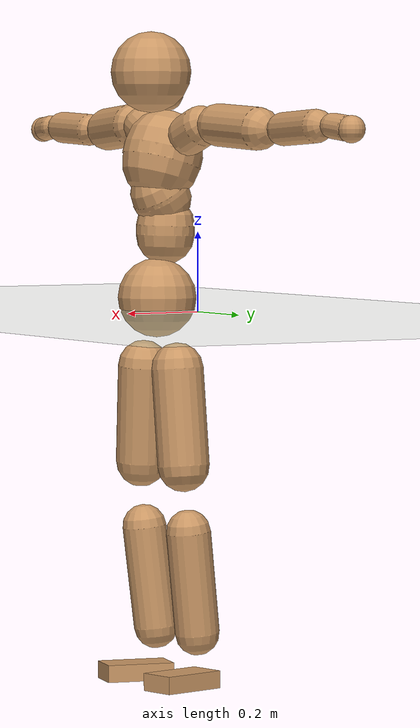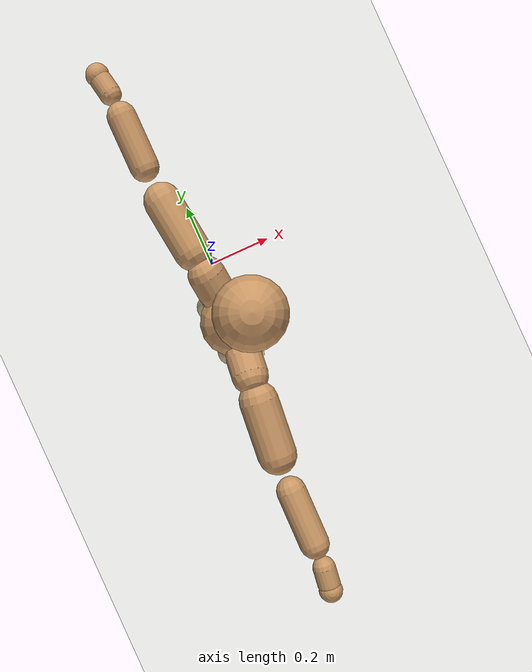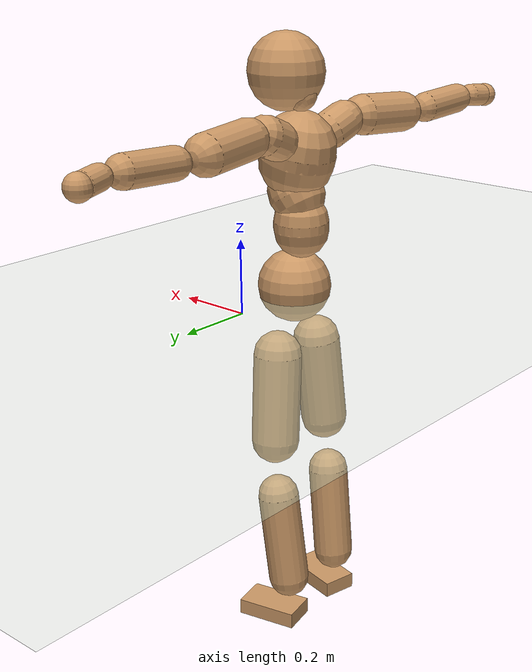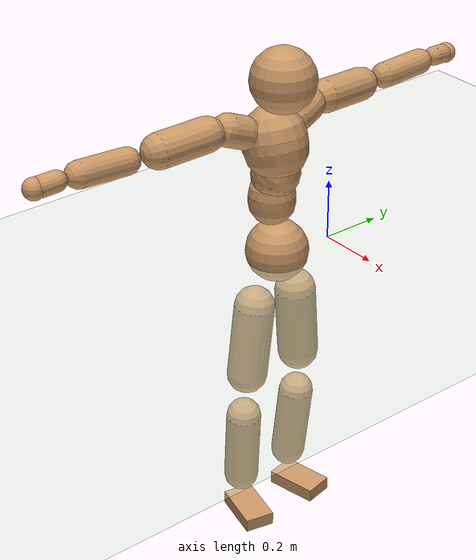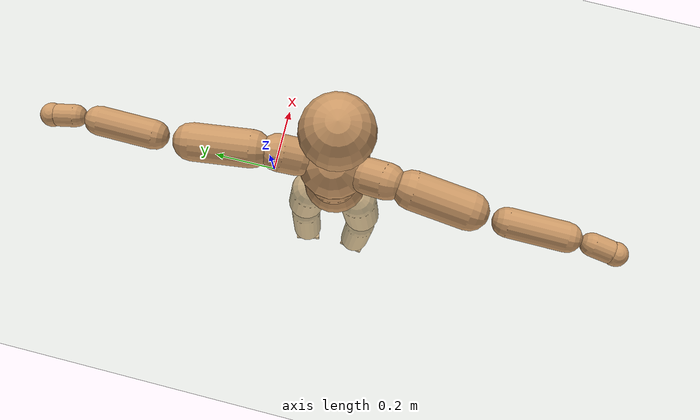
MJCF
<mujoco model="humanoid">
  <compiler coordinate="local" angle="radian"/>
  <default>
    <joint damping="0.0" armature="0.01" stiffness="0.0" limited="true"/>
    <geom conaffinity="1" condim="3" contype="7" margin="0.001" rgba="0.8 0.6 .4 1"/>
  </default>
  <asset>
    <texture type="skybox" builtin="gradient" rgb1=".4 .5 .6" rgb2="0 0 0" width="100" height="100"/>
    <texture builtin="flat" height="1278" mark="cross" markrgb="1 1 1" name="texgeom" random="0.01" rgb1="0.8 0.6 0.4" rgb2="0.8 0.6 0.4" type="cube" width="127"/>
    <texture builtin="checker" height="100" name="texplane" rgb1="0 0 0" rgb2="0.8 0.8 0.8" type="2d" width="100"/>
    <material name="MatPlane" reflectance="0.5" shininess="1" specular="1" texrepeat="60 60" texture="texplane"/>
    <material name="geom" texture="texgeom" texuniform="true"/>
  </asset>
  <worldbody>
    <light cutoff="100" diffuse="1 1 1" dir="-0 0 -1.3" directional="true" exponent="1" pos="0 0 1.3" specular=".1 .1 .1"/>
    <geom conaffinity="1" condim="3" name="floor" pos="0 0 0" rgba="0.8 0.9 0.8 1" size="100 100 .2" type="plane" material="MatPlane"/>
    <body name="Pelvis" pos="0 -0.2077 0.0279">
      <freejoint name="Pelvis"/>
      <geom type="sphere" contype="1" conaffinity="1" density="500" size="0.1005" pos="0.0000 0.0000 0.0000" name="Pelvis"/>
      <body name="L_Hip" pos="-0.0093 0.0778 -0.0953">
        <joint name="L_Hip_x" type="hinge" pos="0 0 0" axis="1 0 0" stiffness="800" damping="80" armature="0.02" range="-180.0000 180.0000"/>
        <joint name="L_Hip_y" type="hinge" pos="0 0 0" axis="0 1 0" stiffness="800" damping="80" armature="0.02" range="-180.0000 180.0000"/>
        <joint name="L_Hip_z" type="hinge" pos="0 0 0" axis="0 0 1" stiffness="800" damping="80" armature="0.02" range="-180.0000 180.0000"/>
        <geom type="capsule" contype="1" conaffinity="1" density="500" fromto="-0.0019 0.0069 -0.0817 -0.0077 0.0276 -0.3267" size="0.0663" name="L_Hip"/>
        <body name="L_Knee" pos="-0.0096 0.0345 -0.4083">
          <joint name="L_Knee_x" type="hinge" pos="0 0 0" axis="1 0 0" stiffness="800" damping="80" armature="0.02" range="-180.0000 180.0000"/>
          <joint name="L_Knee_y" type="hinge" pos="0 0 0" axis="0 1 0" stiffness="800" damping="80" armature="0.02" range="-180.0000 180.0000"/>
          <joint name="L_Knee_z" type="hinge" pos="0 0 0" axis="0 0 1" stiffness="800" damping="80" armature="0.02" range="-180.0000 180.0000"/>
          <geom type="capsule" contype="1" conaffinity="1" density="500" fromto="-0.0099 -0.0024 -0.0867 -0.0398 -0.0096 -0.3466" size="0.0568" name="L_Knee"/>
          <body name="L_Ankle" pos="-0.0497 -0.012 -0.4333">
            <joint name="L_Ankle_x" type="hinge" pos="0 0 0" axis="1 0 0" stiffness="800" damping="80" armature="0.02" range="-180.0000 180.0000"/>
            <joint name="L_Ankle_y" type="hinge" pos="0 0 0" axis="0 1 0" stiffness="800" damping="80" armature="0.02" range="-180.0000 180.0000"/>
            <joint name="L_Ankle_z" type="hinge" pos="0 0 0" axis="0 0 1" stiffness="800" damping="80" armature="0.02" range="-180.0000 180.0000"/>
            <geom type="box" contype="1" conaffinity="1" density="500" pos="0.0607 0.0130 -0.0304" size="0.0862 0.0482 0.0224" quat="0.9944 0.0000 0.0000 0.1056" name="L_Ankle"/>
            <body name="L_Toe" pos="0.1214 0.0261 -0.0609">
              <joint name="L_Toe_x" type="hinge" pos="0 0 0" axis="1 0 0" stiffness="500" damping="50" armature="0.02" range="-180.0000 180.0000"/>
              <joint name="L_Toe_y" type="hinge" pos="0 0 0" axis="0 1 0" stiffness="500" damping="50" armature="0.02" range="-180.0000 180.0000"/>
              <joint name="L_Toe_z" type="hinge" pos="0 0 0" axis="0 0 1" stiffness="500" damping="50" armature="0.02" range="-180.0000 180.0000"/>
              <geom type="box" contype="1" conaffinity="1" density="500" pos="0.0000 0.0000 0.0298" size="0.001 0.0024 0.0011" quat="0.9937 0.0000 0.0000 0.1116" name="L_Toe"/>
            </body>
          </body>
        </body>
      </body>
      <body name="R_Hip" pos="-0.0051 -0.0752 -0.0947">
        <joint name="R_Hip_x" type="hinge" pos="0 0 0" axis="1 0 0" stiffness="800" damping="80" armature="0.02" range="-180.0000 180.0000"/>
        <joint name="R_Hip_y" type="hinge" pos="0 0 0" axis="0 1 0" stiffness="800" damping="80" armature="0.02" range="-180.0000 180.0000"/>
        <joint name="R_Hip_z" type="hinge" pos="0 0 0" axis="0 0 1" stiffness="800" damping="80" armature="0.02" range="-180.0000 180.0000"/>
        <geom type="capsule" contype="1" conaffinity="1" density="500" fromto="-0.0025 -0.0084 -0.0828 -0.0099 -0.0336 -0.3313" size="0.0654" name="R_Hip"/>
        <body name="R_Knee" pos="-0.0123 -0.042 -0.4142">
          <joint name="R_Knee_x" type="hinge" pos="0 0 0" axis="1 0 0" stiffness="800" damping="80" armature="0.02" range="-180.0000 180.0000"/>
          <joint name="R_Knee_y" type="hinge" pos="0 0 0" axis="0 1 0" stiffness="800" damping="80" armature="0.02" range="-180.0000 180.0000"/>
          <joint name="R_Knee_z" type="hinge" pos="0 0 0" axis="0 0 1" stiffness="800" damping="80" armature="0.02" range="-180.0000 180.0000"/>
          <geom type="capsule" contype="1" conaffinity="1" density="500" fromto="-0.0095 0.0031 -0.0868 -0.0380 0.0123 -0.3472" size="0.0569" name="R_Knee"/>
          <body name="R_Ankle" pos="-0.0475 0.0154 -0.434">
            <joint name="R_Ankle_x" type="hinge" pos="0 0 0" axis="1 0 0" stiffness="800" damping="80" armature="0.02" range="-180.0000 180.0000"/>
            <joint name="R_Ankle_y" type="hinge" pos="0 0 0" axis="0 1 0" stiffness="800" damping="80" armature="0.02" range="-180.0000 180.0000"/>
            <joint name="R_Ankle_z" type="hinge" pos="0 0 0" axis="0 0 1" stiffness="800" damping="80" armature="0.02" range="-180.0000 180.0000"/>
            <geom type="box" contype="1" conaffinity="1" density="500" pos="0.0628 -0.0138 -0.0262" size="0.0879 0.0486 0.0222" quat="0.9942 0.0000 0.0000 -0.1080" name="R_Ankle"/>
            <body name="R_Toe" pos="0.1256 -0.0276 -0.0523">
              <joint name="R_Toe_x" type="hinge" pos="0 0 0" axis="1 0 0" stiffness="500" damping="50" armature="0.02" range="-180.0000 180.0000"/>
              <joint name="R_Toe_y" type="hinge" pos="0 0 0" axis="0 1 0" stiffness="500" damping="50" armature="0.02" range="-180.0000 180.0000"/>
              <joint name="R_Toe_z" type="hinge" pos="0 0 0" axis="0 0 1" stiffness="500" damping="50" armature="0.02" range="-180.0000 180.0000"/>
              <geom type="box" contype="1" conaffinity="1" density="500" pos="0.0000 0.0000 0.0282" size="0.0009 0.0024 0.0012" quat="0.9951 0.0000 0.0000 -0.0989" name="R_Toe"/>
            </body>
          </body>
        </body>
      </body>
      <body name="Torso" pos="-0.0241 -0.0026 0.1089">
        <joint name="Torso_x" type="hinge" pos="0 0 0" axis="1 0 0" stiffness="1000" damping="100" armature="0.02" range="-180.0000 180.0000"/>
        <joint name="Torso_y" type="hinge" pos="0 0 0" axis="0 1 0" stiffness="1000" damping="100" armature="0.02" range="-180.0000 180.0000"/>
        <joint name="Torso_z" type="hinge" pos="0 0 0" axis="0 0 1" stiffness="1000" damping="100" armature="0.02" range="-180.0000 180.0000"/>
        <geom type="capsule" contype="1" conaffinity="1" density="500" fromto="-0.0011 0.0020 0.0751 -0.0007 0.0013 0.0501" size="0.0746" name="Torso"/>
        <body name="Spine" pos="-0.0019 0.0033 0.1251">
          <joint name="Spine_x" type="hinge" pos="0 0 0" axis="1 0 0" stiffness="1000" damping="100" armature="0.02" range="-180.0000 180.0000"/>
          <joint name="Spine_y" type="hinge" pos="0 0 0" axis="0 1 0" stiffness="1000" damping="100" armature="0.02" range="-180.0000 180.0000"/>
          <joint name="Spine_z" type="hinge" pos="0 0 0" axis="0 0 1" stiffness="1000" damping="100" armature="0.02" range="-180.0000 180.0000"/>
          <geom type="capsule" contype="1" conaffinity="1" density="500" fromto="0.0187 0.0009 0.0304 0.0124 0.0006 0.0203" size="0.0757" name="Spine"/>
          <body name="Chest" pos="0.0311 0.0015 0.0506">
            <joint name="Chest_x" type="hinge" pos="0 0 0" axis="1 0 0" stiffness="1000" damping="100" armature="0.02" range="-180.0000 180.0000"/>
            <joint name="Chest_y" type="hinge" pos="0 0 0" axis="0 1 0" stiffness="1000" damping="100" armature="0.02" range="-180.0000 180.0000"/>
            <joint name="Chest_z" type="hinge" pos="0 0 0" axis="0 0 1" stiffness="1000" damping="100" armature="0.02" range="-180.0000 180.0000"/>
            <geom type="capsule" contype="1" conaffinity="1" density="500" fromto="-0.0248 -0.0008 0.0918 -0.0165 -0.0005 0.0612" size="0.1016" name="Chest"/>
            <body name="Neck" pos="-0.0438 -0.0021 0.2181">
              <joint name="Neck_x" type="hinge" pos="0 0 0" axis="1 0 0" stiffness="500" damping="50" armature="0.02" range="-180.0000 180.0000"/>
              <joint name="Neck_y" type="hinge" pos="0 0 0" axis="0 1 0" stiffness="500" damping="50" armature="0.02" range="-180.0000 180.0000"/>
              <joint name="Neck_z" type="hinge" pos="0 0 0" axis="0 0 1" stiffness="500" damping="50" armature="0.02" range="-180.0000 180.0000"/>
              <geom type="capsule" contype="1" conaffinity="1" density="500" fromto="0.0116 0.0007 0.0138 0.0464 0.0028 0.0553" size="0.0431" name="Neck"/>
              <body name="Head" pos="0.058 0.0035 0.0691">
                <joint name="Head_x" type="hinge" pos="0 0 0" axis="1 0 0" stiffness="500" damping="50" armature="0.02" range="-180.0000 180.0000"/>
                <joint name="Head_y" type="hinge" pos="0 0 0" axis="0 1 0" stiffness="500" damping="50" armature="0.02" range="-180.0000 180.0000"/>
                <joint name="Head_z" type="hinge" pos="0 0 0" axis="0 0 1" stiffness="500" damping="50" armature="0.02" range="-180.0000 180.0000"/>
                <geom type="sphere" contype="1" conaffinity="1" density="500" size="0.1025" pos="0.0000 0.0000 0.0000" name="Head"/>
              </body>
            </body>
            <body name="L_Thorax" pos="-0.0375 0.0803 0.1214">
              <joint name="L_Thorax_x" type="hinge" pos="0 0 0" axis="1 0 0" stiffness="500" damping="50" armature="0.02" range="-180.0000 180.0000"/>
              <joint name="L_Thorax_y" type="hinge" pos="0 0 0" axis="0 1 0" stiffness="500" damping="50" armature="0.02" range="-180.0000 180.0000"/>
              <joint name="L_Thorax_z" type="hinge" pos="0 0 0" axis="0 0 1" stiffness="500" damping="50" armature="0.02" range="-180.0000 180.0000"/>
              <geom type="capsule" contype="1" conaffinity="1" density="500" fromto="-0.0020 0.0174 0.0070 -0.0080 0.0697 0.0281" size="0.0529" name="L_Thorax"/>
              <body name="L_Shoulder" pos="-0.01 0.0871 0.0352">
                <joint name="L_Shoulder_x" type="hinge" pos="0 0 0" axis="1 0 0" stiffness="500" damping="50" armature="0.02" range="-720.0000 720.0000"/>
                <joint name="L_Shoulder_y" type="hinge" pos="0 0 0" axis="0 1 0" stiffness="500" damping="50" armature="0.02" range="-720.0000 720.0000"/>
                <joint name="L_Shoulder_z" type="hinge" pos="0 0 0" axis="0 0 1" stiffness="500" damping="50" armature="0.02" range="-720.0000 720.0000"/>
                <geom type="capsule" contype="1" conaffinity="1" density="500" fromto="-0.0063 0.0546 -0.0033 -0.0250 0.2186 -0.0131" size="0.0535" name="L_Shoulder"/>
                <body name="L_Elbow" pos="-0.0313 0.2732 -0.0163">
                  <joint name="L_Elbow_x" type="hinge" pos="0 0 0" axis="1 0 0" stiffness="500" damping="50" armature="0.02" range="-720.0000 720.0000"/>
                  <joint name="L_Elbow_y" type="hinge" pos="0 0 0" axis="0 1 0" stiffness="500" damping="50" armature="0.02" range="-720.0000 720.0000"/>
                  <joint name="L_Elbow_z" type="hinge" pos="0 0 0" axis="0 0 1" stiffness="500" damping="50" armature="0.02" range="-720.0000 720.0000"/>
                  <geom type="capsule" contype="1" conaffinity="1" density="500" fromto="-0.0000 0.0511 0.0024 -0.0000 0.2043 0.0097" size="0.0411" name="L_Elbow"/>
                  <body name="L_Wrist" pos="0 0.2554 0.0121">
                    <joint name="L_Wrist_x" type="hinge" pos="0 0 0" axis="1 0 0" stiffness="300" damping="30" armature="0.02" range="-180.0000 180.0000"/>
                    <joint name="L_Wrist_y" type="hinge" pos="0 0 0" axis="0 1 0" stiffness="300" damping="30" armature="0.02" range="-180.0000 180.0000"/>
                    <joint name="L_Wrist_z" type="hinge" pos="0 0 0" axis="0 0 1" stiffness="300" damping="30" armature="0.02" range="-180.0000 180.0000"/>
                    <geom type="capsule" contype="1" conaffinity="1" density="500" fromto="-0.0027 0.0165 -0.0020 -0.0110 0.0659 -0.0081" size="0.0311" name="L_Wrist"/>
                    <body name="L_Hand" pos="-0.0137 0.0824 -0.0101">
                      <joint name="L_Hand_x" type="hinge" pos="0 0 0" axis="1 0 0" stiffness="300" damping="30" armature="0.02" range="-180.0000 180.0000"/>
                      <joint name="L_Hand_y" type="hinge" pos="0 0 0" axis="0 1 0" stiffness="300" damping="30" armature="0.02" range="-180.0000 180.0000"/>
                      <joint name="L_Hand_z" type="hinge" pos="0 0 0" axis="0 0 1" stiffness="300" damping="30" armature="0.02" range="-180.0000 180.0000"/>
                      <geom type="sphere" contype="1" conaffinity="1" density="500" size="0.0332" pos="0.0000 0.0000 0.0000" name="L_Hand"/>
                    </body>
                  </body>
                </body>
              </body>
            </body>
            <body name="R_Thorax" pos="-0.0428 -0.082 0.1195">
              <joint name="R_Thorax_x" type="hinge" pos="0 0 0" axis="1 0 0" stiffness="500" damping="50" armature="0.02" range="-180.0000 180.0000"/>
              <joint name="R_Thorax_y" type="hinge" pos="0 0 0" axis="0 1 0" stiffness="500" damping="50" armature="0.02" range="-180.0000 180.0000"/>
              <joint name="R_Thorax_z" type="hinge" pos="0 0 0" axis="0 0 1" stiffness="500" damping="50" armature="0.02" range="-180.0000 180.0000"/>
              <geom type="capsule" contype="1" conaffinity="1" density="500" fromto="-0.0021 -0.0181 0.0074 -0.0086 -0.0724 0.0296" size="0.0519" name="R_Thorax"/>
              <body name="R_Shoulder" pos="-0.0107 -0.0905 0.037">
                <joint name="R_Shoulder_x" type="hinge" pos="0 0 0" axis="1 0 0" stiffness="500" damping="50" armature="0.02" range="-720.0000 720.0000"/>
                <joint name="R_Shoulder_y" type="hinge" pos="0 0 0" axis="0 1 0" stiffness="500" damping="50" armature="0.02" range="-720.0000 720.0000"/>
                <joint name="R_Shoulder_z" type="hinge" pos="0 0 0" axis="0 0 1" stiffness="500" damping="50" armature="0.02" range="-720.0000 720.0000"/>
                <geom type="capsule" contype="1" conaffinity="1" density="500" fromto="-0.0050 -0.0533 -0.0035 -0.0202 -0.2131 -0.0141" size="0.0553" name="R_Shoulder"/>
                <body name="R_Elbow" pos="-0.0252 -0.2664 -0.0177">
                  <joint name="R_Elbow_x" type="hinge" pos="0 0 0" axis="1 0 0" stiffness="500" damping="50" armature="0.02" range="-720.0000 720.0000"/>
                  <joint name="R_Elbow_y" type="hinge" pos="0 0 0" axis="0 1 0" stiffness="500" damping="50" armature="0.02" range="-720.0000 720.0000"/>
                  <joint name="R_Elbow_z" type="hinge" pos="0 0 0" axis="0 0 1" stiffness="500" damping="50" armature="0.02" range="-720.0000 720.0000"/>
                  <geom type="capsule" contype="1" conaffinity="1" density="500" fromto="-0.0007 -0.0529 0.0023 -0.0026 -0.2117 0.0090" size="0.0417" name="R_Elbow"/>
                  <body name="R_Wrist" pos="-0.0033 -0.2647 0.0113">
                    <joint name="R_Wrist_x" type="hinge" pos="0 0 0" axis="1 0 0" stiffness="300" damping="30" armature="0.02" range="-180.0000 180.0000"/>
                    <joint name="R_Wrist_y" type="hinge" pos="0 0 0" axis="0 1 0" stiffness="300" damping="30" armature="0.02" range="-180.0000 180.0000"/>
                    <joint name="R_Wrist_z" type="hinge" pos="0 0 0" axis="0 0 1" stiffness="300" damping="30" armature="0.02" range="-180.0000 180.0000"/>
                    <geom type="capsule" contype="1" conaffinity="1" density="500" fromto="-0.0022 -0.0167 -0.0015 -0.0087 -0.0669 -0.0061" size="0.0321" name="R_Wrist"/>
                    <body name="R_Hand" pos="-0.0109 -0.0836 -0.0076">
                      <joint name="R_Hand_x" type="hinge" pos="0 0 0" axis="1 0 0" stiffness="300" damping="30" armature="0.02" range="-180.0000 180.0000"/>
                      <joint name="R_Hand_y" type="hinge" pos="0 0 0" axis="0 1 0" stiffness="300" damping="30" armature="0.02" range="-180.0000 180.0000"/>
                      <joint name="R_Hand_z" type="hinge" pos="0 0 0" axis="0 0 1" stiffness="300" damping="30" armature="0.02" range="-180.0000 180.0000"/>
                      <geom type="sphere" contype="1" conaffinity="1" density="500" size="0.0336" pos="0.0000 0.0000 0.0000" name="R_Hand"/>
                    </body>
                  </body>
                </body>
              </body>
            </body>
          </body>
        </body>
      </body>
    </body>
  </worldbody>
  <actuator>
    <motor name="L_Hip_x" joint="L_Hip_x" gear="500"/>
    <motor name="L_Hip_y" joint="L_Hip_y" gear="500"/>
    <motor name="L_Hip_z" joint="L_Hip_z" gear="500"/>
    <motor name="L_Knee_x" joint="L_Knee_x" gear="500"/>
    <motor name="L_Knee_y" joint="L_Knee_y" gear="500"/>
    <motor name="L_Knee_z" joint="L_Knee_z" gear="500"/>
    <motor name="L_Ankle_x" joint="L_Ankle_x" gear="500"/>
    <motor name="L_Ankle_y" joint="L_Ankle_y" gear="500"/>
    <motor name="L_Ankle_z" joint="L_Ankle_z" gear="500"/>
    <motor name="L_Toe_x" joint="L_Toe_x" gear="500"/>
    <motor name="L_Toe_y" joint="L_Toe_y" gear="500"/>
    <motor name="L_Toe_z" joint="L_Toe_z" gear="500"/>
    <motor name="R_Hip_x" joint="R_Hip_x" gear="500"/>
    <motor name="R_Hip_y" joint="R_Hip_y" gear="500"/>
    <motor name="R_Hip_z" joint="R_Hip_z" gear="500"/>
    <motor name="R_Knee_x" joint="R_Knee_x" gear="500"/>
    <motor name="R_Knee_y" joint="R_Knee_y" gear="500"/>
    <motor name="R_Knee_z" joint="R_Knee_z" gear="500"/>
    <motor name="R_Ankle_x" joint="R_Ankle_x" gear="500"/>
    <motor name="R_Ankle_y" joint="R_Ankle_y" gear="500"/>
    <motor name="R_Ankle_z" joint="R_Ankle_z" gear="500"/>
    <motor name="R_Toe_x" joint="R_Toe_x" gear="500"/>
    <motor name="R_Toe_y" joint="R_Toe_y" gear="500"/>
    <motor name="R_Toe_z" joint="R_Toe_z" gear="500"/>
    <motor name="Torso_x" joint="Torso_x" gear="500"/>
    <motor name="Torso_y" joint="Torso_y" gear="500"/>
    <motor name="Torso_z" joint="Torso_z" gear="500"/>
    <motor name="Spine_x" joint="Spine_x" gear="500"/>
    <motor name="Spine_y" joint="Spine_y" gear="500"/>
    <motor name="Spine_z" joint="Spine_z" gear="500"/>
    <motor name="Chest_x" joint="Chest_x" gear="500"/>
    <motor name="Chest_y" joint="Chest_y" gear="500"/>
    <motor name="Chest_z" joint="Chest_z" gear="500"/>
    <motor name="Neck_x" joint="Neck_x" gear="500"/>
    <motor name="Neck_y" joint="Neck_y" gear="500"/>
    <motor name="Neck_z" joint="Neck_z" gear="500"/>
    <motor name="Head_x" joint="Head_x" gear="500"/>
    <motor name="Head_y" joint="Head_y" gear="500"/>
    <motor name="Head_z" joint="Head_z" gear="500"/>
    <motor name="L_Thorax_x" joint="L_Thorax_x" gear="500"/>
    <motor name="L_Thorax_y" joint="L_Thorax_y" gear="500"/>
    <motor name="L_Thorax_z" joint="L_Thorax_z" gear="500"/>
    <motor name="L_Shoulder_x" joint="L_Shoulder_x" gear="500"/>
    <motor name="L_Shoulder_y" joint="L_Shoulder_y" gear="500"/>
    <motor name="L_Shoulder_z" joint="L_Shoulder_z" gear="500"/>
    <motor name="L_Elbow_x" joint="L_Elbow_x" gear="500"/>
    <motor name="L_Elbow_y" joint="L_Elbow_y" gear="500"/>
    <motor name="L_Elbow_z" joint="L_Elbow_z" gear="500"/>
    <motor name="L_Wrist_x" joint="L_Wrist_x" gear="500"/>
    <motor name="L_Wrist_y" joint="L_Wrist_y" gear="500"/>
    <motor name="L_Wrist_z" joint="L_Wrist_z" gear="500"/>
    <motor name="L_Hand_x" joint="L_Hand_x" gear="500"/>
    <motor name="L_Hand_y" joint="L_Hand_y" gear="500"/>
    <motor name="L_Hand_z" joint="L_Hand_z" gear="500"/>
    <motor name="R_Thorax_x" joint="R_Thorax_x" gear="500"/>
    <motor name="R_Thorax_y" joint="R_Thorax_y" gear="500"/>
    <motor name="R_Thorax_z" joint="R_Thorax_z" gear="500"/>
    <motor name="R_Shoulder_x" joint="R_Shoulder_x" gear="500"/>
    <motor name="R_Shoulder_y" joint="R_Shoulder_y" gear="500"/>
    <motor name="R_Shoulder_z" joint="R_Shoulder_z" gear="500"/>
    <motor name="R_Elbow_x" joint="R_Elbow_x" gear="500"/>
    <motor name="R_Elbow_y" joint="R_Elbow_y" gear="500"/>
    <motor name="R_Elbow_z" joint="R_Elbow_z" gear="500"/>
    <motor name="R_Wrist_x" joint="R_Wrist_x" gear="500"/>
    <motor name="R_Wrist_y" joint="R_Wrist_y" gear="500"/>
    <motor name="R_Wrist_z" joint="R_Wrist_z" gear="500"/>
    <motor name="R_Hand_x" joint="R_Hand_x" gear="500"/>
    <motor name="R_Hand_y" joint="R_Hand_y" gear="500"/>
    <motor name="R_Hand_z" joint="R_Hand_z" gear="500"/>
  </actuator>
  <contact>
    <exclude body1="Torso" body2="Chest"/>
    <exclude body1="Head" body2="Chest"/>
    <exclude body1="R_Knee" body2="R_Toe"/>
    <exclude body1="R_Knee" body2="L_Ankle"/>
    <exclude body1="R_Knee" body2="L_Toe"/>
    <exclude body1="L_Knee" body2="L_Toe"/>
    <exclude body1="L_Knee" body2="R_Ankle"/>
    <exclude body1="L_Knee" body2="R_Toe"/>
    <exclude body1="L_Shoulder" body2="Chest"/>
    <exclude body1="R_Shoulder" body2="Chest"/>
  </contact>
  <sensor/>
  <size njmax="700" nconmax="700"/>
</mujoco>
